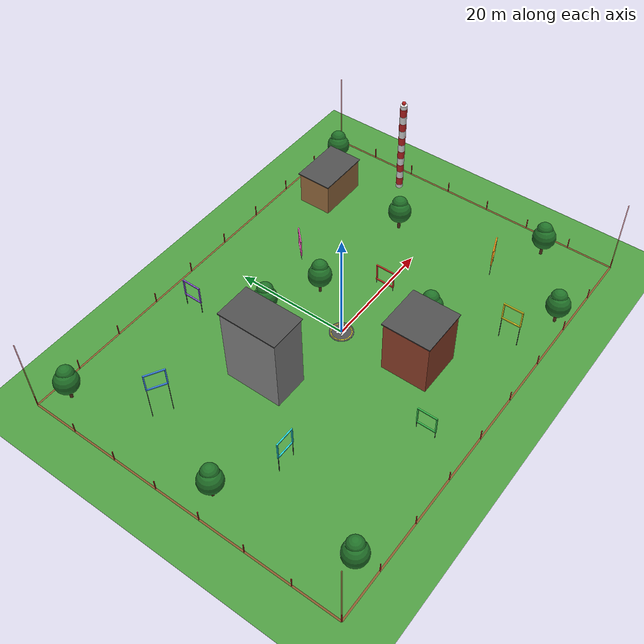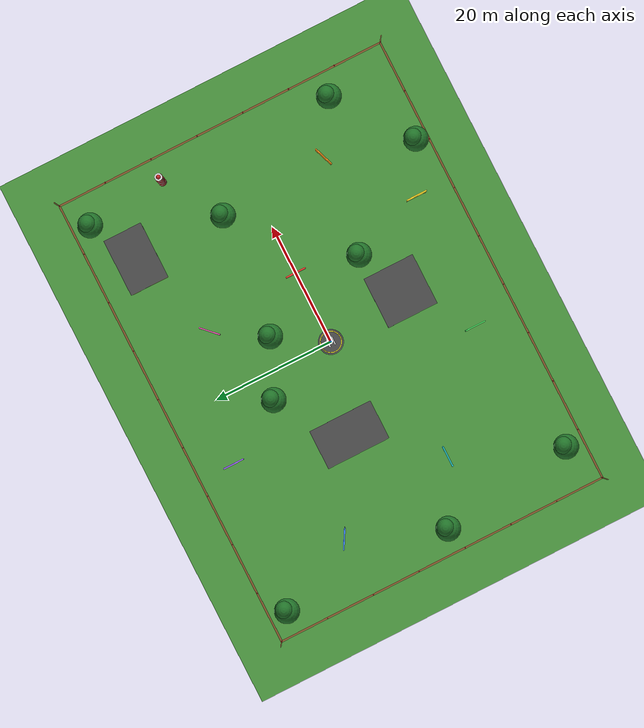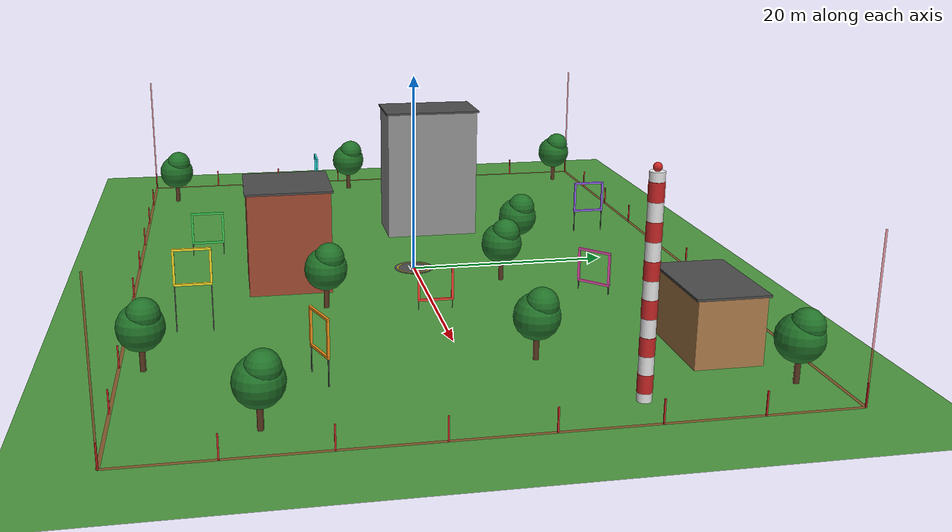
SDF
<sdf version="1.6">
 <world name="dronelab_arena">
  <physics type="ode">
   <ode>
    <solver><type>quick</type><iters>100</iters><sor>1.0</sor></solver>
    <constraints>
     <cfm>0.0</cfm>
     <erp>0.2</erp>
     <contact_max_correcting_vel>0.1</contact_max_correcting_vel>
     <contact_surface_layer>0.0</contact_surface_layer>
    </constraints>
   </ode>
   <max_step_size>0.001</max_step_size>
   <real_time_factor>1.0</real_time_factor>
   <real_time_update_rate>-1</real_time_update_rate>
  </physics>
  <gravity>0 0 -9.8</gravity>
  <spherical_coordinates>
   <surface_model>EARTH_WGS84</surface_model>
   <latitude_deg>48.1508457</latitude_deg>
   <longitude_deg>17.0727297</longitude_deg>
   <elevation>140.0</elevation>
   <heading_deg>0</heading_deg>
  </spherical_coordinates>
  <scene>
   <ambient>0.55 0.55 0.6 1</ambient>
   <background>0.62 0.78 0.95 1</background>
   <sky><clouds><speed>3</speed></clouds></sky>
   <shadows>false</shadows>
   <grid>false</grid>
   <origin_visual>false</origin_visual>
  </scene>
  <light name="sun" type="directional">
   <cast_shadows>false</cast_shadows>
   <pose>0 0 30 0 0 0</pose>
   <diffuse>0.9 0.9 0.85 1</diffuse>
   <specular>0.2 0.2 0.2 1</specular>
   <direction>-0.4 0.3 -0.85</direction>
  </light>
  <plugin name="gazebo_ros_state" filename="libgazebo_ros_state.so">
   <ros><namespace>/gazebo</namespace></ros>
   <update_rate>2.0</update_rate>
  </plugin>
  <model name="ground">
   <static>true</static>
   <link name="link">
    <collision name="c">
     <geometry><plane><normal>0 0 1</normal><size>300 300</size></plane></geometry>
     <surface><friction><ode><mu>1.0</mu><mu2>1.0</mu2></ode></friction></surface>
    </collision>
    <visual name="grass">
     <cast_shadows>false</cast_shadows>
     <geometry><plane><normal>0 0 1</normal><size>300 300</size></plane></geometry>
     <material>
      <script><uri>file://media/materials/scripts/gazebo.material</uri><name>Gazebo/Grass</name></script>
     </material>
    </visual>
    <visual name="road0">
     <pose>0.00 -6.00 0.005 0 0 0</pose>
     <geometry><box><size>120.0 4.0 0.01</size></box></geometry>
     <material>
      <script><uri>file://media/materials/scripts/gazebo.material</uri><name>Gazebo/Road</name></script>
     </material>
    </visual>
    <visual name="road1">
     <pose>-32.00 -0.00 0.005 0 0 0</pose>
     <geometry><box><size>4.0 120.0 0.01</size></box></geometry>
     <material>
      <script><uri>file://media/materials/scripts/gazebo.material</uri><name>Gazebo/Road</name></script>
     </material>
    </visual>
   </link>
  </model>
  <model name="landing_pad">
   <static>true</static>
   <link name="link">
    <visual name="pad_v">
     <pose>0 0 0.01 0 0 0</pose>
     <geometry><cylinder><radius>2.0</radius><length>0.02</length></cylinder></geometry>
     <material>
      <script><uri>file://media/materials/scripts/gazebo.material</uri><name>Gazebo/DarkGrey</name></script>
     </material>
    </visual>
    <visual name="ring_v">
     <pose>0 0 0.012 0 0 0</pose>
     <geometry><cylinder><radius>1.75</radius><length>0.02</length></cylinder></geometry>
     <material>
      <script><uri>file://media/materials/scripts/gazebo.material</uri><name>Gazebo/Yellow</name></script>
     </material>
    </visual>
    <visual name="inner_v">
     <pose>0 0 0.014 0 0 0</pose>
     <geometry><cylinder><radius>1.6</radius><length>0.02</length></cylinder></geometry>
     <material>
      <script><uri>file://media/materials/scripts/gazebo.material</uri><name>Gazebo/DarkGrey</name></script>
     </material>
    </visual>
    <visual name="h_l_v">
     <pose>0.000 0.450 0.026 0.0000 0.0000 0.0000</pose>
     <geometry><box><size>1.4 0.22 0.01</size></box></geometry>
     <material>
      <script><uri>file://media/materials/scripts/gazebo.material</uri><name>Gazebo/White</name></script>
     </material>
    </visual>
    <visual name="h_r_v">
     <pose>0.000 -0.450 0.026 0.0000 0.0000 0.0000</pose>
     <geometry><box><size>1.4 0.22 0.01</size></box></geometry>
     <material>
      <script><uri>file://media/materials/scripts/gazebo.material</uri><name>Gazebo/White</name></script>
     </material>
    </visual>
    <visual name="h_m_v">
     <pose>0.000 0.000 0.026 0.0000 0.0000 0.0000</pose>
     <geometry><box><size>0.22 0.9 0.01</size></box></geometry>
     <material>
      <script><uri>file://media/materials/scripts/gazebo.material</uri><name>Gazebo/White</name></script>
     </material>
    </visual>
   </link>
  </model>
  <model name="fence_markers">
   <static>true</static>
   <link name="link">
    <visual name="tape0_v">
     <pose>-38.000 0.000 0.020 0.0000 0.0000 -1.5708</pose>
     <geometry><box><size>56.0 0.3 0.02</size></box></geometry>
     <material>
      <script><uri>file://media/materials/scripts/gazebo.material</uri><name>Gazebo/RedTransparent</name></script>
     </material>
    </visual>
    <visual name="post0_0_v">
     <pose>-38.000 28.000 1.000 0.0000 0.0000 0.0000</pose>
     <geometry><box><size>0.12 0.12 2.0</size></box></geometry>
     <material>
      <script><uri>file://media/materials/scripts/gazebo.material</uri><name>Gazebo/Red</name></script>
     </material>
    </visual>
    <visual name="post0_1_v">
     <pose>-38.000 20.000 1.000 0.0000 0.0000 0.0000</pose>
     <geometry><box><size>0.12 0.12 2.0</size></box></geometry>
     <material>
      <script><uri>file://media/materials/scripts/gazebo.material</uri><name>Gazebo/Red</name></script>
     </material>
    </visual>
    <visual name="post0_2_v">
     <pose>-38.000 12.000 1.000 0.0000 0.0000 0.0000</pose>
     <geometry><box><size>0.12 0.12 2.0</size></box></geometry>
     <material>
      <script><uri>file://media/materials/scripts/gazebo.material</uri><name>Gazebo/Red</name></script>
     </material>
    </visual>
    <visual name="post0_3_v">
     <pose>-38.000 4.000 1.000 0.0000 0.0000 0.0000</pose>
     <geometry><box><size>0.12 0.12 2.0</size></box></geometry>
     <material>
      <script><uri>file://media/materials/scripts/gazebo.material</uri><name>Gazebo/Red</name></script>
     </material>
    </visual>
    <visual name="post0_4_v">
     <pose>-38.000 -4.000 1.000 0.0000 0.0000 0.0000</pose>
     <geometry><box><size>0.12 0.12 2.0</size></box></geometry>
     <material>
      <script><uri>file://media/materials/scripts/gazebo.material</uri><name>Gazebo/Red</name></script>
     </material>
    </visual>
    <visual name="post0_5_v">
     <pose>-38.000 -12.000 1.000 0.0000 0.0000 0.0000</pose>
     <geometry><box><size>0.12 0.12 2.0</size></box></geometry>
     <material>
      <script><uri>file://media/materials/scripts/gazebo.material</uri><name>Gazebo/Red</name></script>
     </material>
    </visual>
    <visual name="post0_6_v">
     <pose>-38.000 -20.000 1.000 0.0000 0.0000 0.0000</pose>
     <geometry><box><size>0.12 0.12 2.0</size></box></geometry>
     <material>
      <script><uri>file://media/materials/scripts/gazebo.material</uri><name>Gazebo/Red</name></script>
     </material>
    </visual>
    <visual name="tape1_v">
     <pose>0.000 -28.000 0.020 0.0000 0.0000 0.0000</pose>
     <geometry><box><size>76.0 0.3 0.02</size></box></geometry>
     <material>
      <script><uri>file://media/materials/scripts/gazebo.material</uri><name>Gazebo/RedTransparent</name></script>
     </material>
    </visual>
    <visual name="post1_0_v">
     <pose>-38.000 -28.000 1.000 0.0000 0.0000 0.0000</pose>
     <geometry><box><size>0.12 0.12 2.0</size></box></geometry>
     <material>
      <script><uri>file://media/materials/scripts/gazebo.material</uri><name>Gazebo/Red</name></script>
     </material>
    </visual>
    <visual name="post1_1_v">
     <pose>-29.556 -28.000 1.000 0.0000 0.0000 0.0000</pose>
     <geometry><box><size>0.12 0.12 2.0</size></box></geometry>
     <material>
      <script><uri>file://media/materials/scripts/gazebo.material</uri><name>Gazebo/Red</name></script>
     </material>
    </visual>
    <visual name="post1_2_v">
     <pose>-21.111 -28.000 1.000 0.0000 0.0000 0.0000</pose>
     <geometry><box><size>0.12 0.12 2.0</size></box></geometry>
     <material>
      <script><uri>file://media/materials/scripts/gazebo.material</uri><name>Gazebo/Red</name></script>
     </material>
    </visual>
    <visual name="post1_3_v">
     <pose>-12.667 -28.000 1.000 0.0000 0.0000 0.0000</pose>
     <geometry><box><size>0.12 0.12 2.0</size></box></geometry>
     <material>
      <script><uri>file://media/materials/scripts/gazebo.material</uri><name>Gazebo/Red</name></script>
     </material>
    </visual>
    <visual name="post1_4_v">
     <pose>-4.222 -28.000 1.000 0.0000 0.0000 0.0000</pose>
     <geometry><box><size>0.12 0.12 2.0</size></box></geometry>
     <material>
      <script><uri>file://media/materials/scripts/gazebo.material</uri><name>Gazebo/Red</name></script>
     </material>
    </visual>
    <visual name="post1_5_v">
     <pose>4.222 -28.000 1.000 0.0000 0.0000 0.0000</pose>
     <geometry><box><size>0.12 0.12 2.0</size></box></geometry>
     <material>
      <script><uri>file://media/materials/scripts/gazebo.material</uri><name>Gazebo/Red</name></script>
     </material>
    </visual>
    <visual name="post1_6_v">
     <pose>12.667 -28.000 1.000 0.0000 0.0000 0.0000</pose>
     <geometry><box><size>0.12 0.12 2.0</size></box></geometry>
     <material>
      <script><uri>file://media/materials/scripts/gazebo.material</uri><name>Gazebo/Red</name></script>
     </material>
    </visual>
    <visual name="post1_7_v">
     <pose>21.111 -28.000 1.000 0.0000 0.0000 0.0000</pose>
     <geometry><box><size>0.12 0.12 2.0</size></box></geometry>
     <material>
      <script><uri>file://media/materials/scripts/gazebo.material</uri><name>Gazebo/Red</name></script>
     </material>
    </visual>
    <visual name="post1_8_v">
     <pose>29.556 -28.000 1.000 0.0000 0.0000 0.0000</pose>
     <geometry><box><size>0.12 0.12 2.0</size></box></geometry>
     <material>
      <script><uri>file://media/materials/scripts/gazebo.material</uri><name>Gazebo/Red</name></script>
     </material>
    </visual>
    <visual name="tape2_v">
     <pose>38.000 0.000 0.020 0.0000 0.0000 1.5708</pose>
     <geometry><box><size>56.0 0.3 0.02</size></box></geometry>
     <material>
      <script><uri>file://media/materials/scripts/gazebo.material</uri><name>Gazebo/RedTransparent</name></script>
     </material>
    </visual>
    <visual name="post2_0_v">
     <pose>38.000 -28.000 1.000 0.0000 0.0000 0.0000</pose>
     <geometry><box><size>0.12 0.12 2.0</size></box></geometry>
     <material>
      <script><uri>file://media/materials/scripts/gazebo.material</uri><name>Gazebo/Red</name></script>
     </material>
    </visual>
    <visual name="post2_1_v">
     <pose>38.000 -20.000 1.000 0.0000 0.0000 0.0000</pose>
     <geometry><box><size>0.12 0.12 2.0</size></box></geometry>
     <material>
      <script><uri>file://media/materials/scripts/gazebo.material</uri><name>Gazebo/Red</name></script>
     </material>
    </visual>
    <visual name="post2_2_v">
     <pose>38.000 -12.000 1.000 0.0000 0.0000 0.0000</pose>
     <geometry><box><size>0.12 0.12 2.0</size></box></geometry>
     <material>
      <script><uri>file://media/materials/scripts/gazebo.material</uri><name>Gazebo/Red</name></script>
     </material>
    </visual>
    <visual name="post2_3_v">
     <pose>38.000 -4.000 1.000 0.0000 0.0000 0.0000</pose>
     <geometry><box><size>0.12 0.12 2.0</size></box></geometry>
     <material>
      <script><uri>file://media/materials/scripts/gazebo.material</uri><name>Gazebo/Red</name></script>
     </material>
    </visual>
    <visual name="post2_4_v">
     <pose>38.000 4.000 1.000 0.0000 0.0000 0.0000</pose>
     <geometry><box><size>0.12 0.12 2.0</size></box></geometry>
     <material>
      <script><uri>file://media/materials/scripts/gazebo.material</uri><name>Gazebo/Red</name></script>
     </material>
    </visual>
    <visual name="post2_5_v">
     <pose>38.000 12.000 1.000 0.0000 0.0000 0.0000</pose>
     <geometry><box><size>0.12 0.12 2.0</size></box></geometry>
     <material>
      <script><uri>file://media/materials/scripts/gazebo.material</uri><name>Gazebo/Red</name></script>
     </material>
    </visual>
    <visual name="post2_6_v">
     <pose>38.000 20.000 1.000 0.0000 0.0000 0.0000</pose>
     <geometry><box><size>0.12 0.12 2.0</size></box></geometry>
     <material>
      <script><uri>file://media/materials/scripts/gazebo.material</uri><name>Gazebo/Red</name></script>
     </material>
    </visual>
    <visual name="tape3_v">
     <pose>0.000 28.000 0.020 0.0000 0.0000 3.1416</pose>
     <geometry><box><size>76.0 0.3 0.02</size></box></geometry>
     <material>
      <script><uri>file://media/materials/scripts/gazebo.material</uri><name>Gazebo/RedTransparent</name></script>
     </material>
    </visual>
    <visual name="post3_0_v">
     <pose>38.000 28.000 1.000 0.0000 0.0000 0.0000</pose>
     <geometry><box><size>0.12 0.12 2.0</size></box></geometry>
     <material>
      <script><uri>file://media/materials/scripts/gazebo.material</uri><name>Gazebo/Red</name></script>
     </material>
    </visual>
    <visual name="post3_1_v">
     <pose>29.556 28.000 1.000 0.0000 0.0000 0.0000</pose>
     <geometry><box><size>0.12 0.12 2.0</size></box></geometry>
     <material>
      <script><uri>file://media/materials/scripts/gazebo.material</uri><name>Gazebo/Red</name></script>
     </material>
    </visual>
    <visual name="post3_2_v">
     <pose>21.111 28.000 1.000 0.0000 0.0000 0.0000</pose>
     <geometry><box><size>0.12 0.12 2.0</size></box></geometry>
     <material>
      <script><uri>file://media/materials/scripts/gazebo.material</uri><name>Gazebo/Red</name></script>
     </material>
    </visual>
    <visual name="post3_3_v">
     <pose>12.667 28.000 1.000 0.0000 0.0000 0.0000</pose>
     <geometry><box><size>0.12 0.12 2.0</size></box></geometry>
     <material>
      <script><uri>file://media/materials/scripts/gazebo.material</uri><name>Gazebo/Red</name></script>
     </material>
    </visual>
    <visual name="post3_4_v">
     <pose>4.222 28.000 1.000 0.0000 0.0000 0.0000</pose>
     <geometry><box><size>0.12 0.12 2.0</size></box></geometry>
     <material>
      <script><uri>file://media/materials/scripts/gazebo.material</uri><name>Gazebo/Red</name></script>
     </material>
    </visual>
    <visual name="post3_5_v">
     <pose>-4.222 28.000 1.000 0.0000 0.0000 0.0000</pose>
     <geometry><box><size>0.12 0.12 2.0</size></box></geometry>
     <material>
      <script><uri>file://media/materials/scripts/gazebo.material</uri><name>Gazebo/Red</name></script>
     </material>
    </visual>
    <visual name="post3_6_v">
     <pose>-12.667 28.000 1.000 0.0000 0.0000 0.0000</pose>
     <geometry><box><size>0.12 0.12 2.0</size></box></geometry>
     <material>
      <script><uri>file://media/materials/scripts/gazebo.material</uri><name>Gazebo/Red</name></script>
     </material>
    </visual>
    <visual name="post3_7_v">
     <pose>-21.111 28.000 1.000 0.0000 0.0000 0.0000</pose>
     <geometry><box><size>0.12 0.12 2.0</size></box></geometry>
     <material>
      <script><uri>file://media/materials/scripts/gazebo.material</uri><name>Gazebo/Red</name></script>
     </material>
    </visual>
    <visual name="post3_8_v">
     <pose>-29.556 28.000 1.000 0.0000 0.0000 0.0000</pose>
     <geometry><box><size>0.12 0.12 2.0</size></box></geometry>
     <material>
      <script><uri>file://media/materials/scripts/gazebo.material</uri><name>Gazebo/Red</name></script>
     </material>
    </visual>
    <visual name="mast0_v">
     <pose>-38 28 7.0 0 0 0</pose>
     <geometry><cylinder><radius>0.08</radius><length>14.0</length></cylinder></geometry>
     <material>
      <script><uri>file://media/materials/scripts/gazebo.material</uri><name>Gazebo/RedTransparent</name></script>
     </material>
    </visual>
    <visual name="mast1_v">
     <pose>-38 -28 7.0 0 0 0</pose>
     <geometry><cylinder><radius>0.08</radius><length>14.0</length></cylinder></geometry>
     <material>
      <script><uri>file://media/materials/scripts/gazebo.material</uri><name>Gazebo/RedTransparent</name></script>
     </material>
    </visual>
    <visual name="mast2_v">
     <pose>38 -28 7.0 0 0 0</pose>
     <geometry><cylinder><radius>0.08</radius><length>14.0</length></cylinder></geometry>
     <material>
      <script><uri>file://media/materials/scripts/gazebo.material</uri><name>Gazebo/RedTransparent</name></script>
     </material>
    </visual>
    <visual name="mast3_v">
     <pose>38 28 7.0 0 0 0</pose>
     <geometry><cylinder><radius>0.08</radius><length>14.0</length></cylinder></geometry>
     <material>
      <script><uri>file://media/materials/scripts/gazebo.material</uri><name>Gazebo/RedTransparent</name></script>
     </material>
    </visual>
   </link>
  </model>
  <model name="gate_1">
   <static>true</static>
   <pose>12.000 -0.000 2.500 0 0 0.0000</pose>
   <link name="link">
    <visual name="top_v">
     <pose>0.000 0.000 1.600 0.0000 0.0000 0.0000</pose>
     <geometry><box><size>0.2 3.4 0.2</size></box></geometry>
     <material>
      <ambient>1.0 0.27 0.2 1</ambient>
      <diffuse>1.0 0.27 0.2 1</diffuse>
      <specular>0.2 0.2 0.2 1</specular>
      <emissive>0.350 0.095 0.070 1</emissive>
     </material>
    </visual>
    <visual name="bottom_v">
     <pose>0.000 0.000 -1.600 0.0000 0.0000 0.0000</pose>
     <geometry><box><size>0.2 3.4 0.2</size></box></geometry>
     <material>
      <ambient>1.0 0.27 0.2 1</ambient>
      <diffuse>1.0 0.27 0.2 1</diffuse>
      <specular>0.2 0.2 0.2 1</specular>
      <emissive>0.350 0.095 0.070 1</emissive>
     </material>
    </visual>
    <visual name="left_v">
     <pose>0.000 1.600 0.000 0.0000 0.0000 0.0000</pose>
     <geometry><box><size>0.2 0.2 3.0</size></box></geometry>
     <material>
      <ambient>1.0 0.27 0.2 1</ambient>
      <diffuse>1.0 0.27 0.2 1</diffuse>
      <specular>0.2 0.2 0.2 1</specular>
      <emissive>0.350 0.095 0.070 1</emissive>
     </material>
    </visual>
    <visual name="right_v">
     <pose>0.000 -1.600 0.000 0.0000 0.0000 0.0000</pose>
     <geometry><box><size>0.2 0.2 3.0</size></box></geometry>
     <material>
      <ambient>1.0 0.27 0.2 1</ambient>
      <diffuse>1.0 0.27 0.2 1</diffuse>
      <specular>0.2 0.2 0.2 1</specular>
      <emissive>0.350 0.095 0.070 1</emissive>
     </material>
    </visual>
    <visual name="legl_v">
     <pose>0.000 1.600 -2.100 0.0000 0.0000 0.0000</pose>
     <geometry><box><size>0.08 0.08 0.8</size></box></geometry>
     <material>
      <script><uri>file://media/materials/scripts/gazebo.material</uri><name>Gazebo/DarkGrey</name></script>
     </material>
    </visual>
    <visual name="legr_v">
     <pose>0.000 -1.600 -2.100 0.0000 0.0000 0.0000</pose>
     <geometry><box><size>0.08 0.08 0.8</size></box></geometry>
     <material>
      <script><uri>file://media/materials/scripts/gazebo.material</uri><name>Gazebo/DarkGrey</name></script>
     </material>
    </visual>
   </link>
  </model>
  <model name="gate_2">
   <static>true</static>
   <pose>26.000 -12.000 4.000 0 0 -1.2217</pose>
   <link name="link">
    <visual name="top_v">
     <pose>0.000 0.000 1.600 0.0000 0.0000 0.0000</pose>
     <geometry><box><size>0.2 3.4 0.2</size></box></geometry>
     <material>
      <ambient>1.0 0.6 0.1 1</ambient>
      <diffuse>1.0 0.6 0.1 1</diffuse>
      <specular>0.2 0.2 0.2 1</specular>
      <emissive>0.350 0.210 0.035 1</emissive>
     </material>
    </visual>
    <visual name="bottom_v">
     <pose>0.000 0.000 -1.600 0.0000 0.0000 0.0000</pose>
     <geometry><box><size>0.2 3.4 0.2</size></box></geometry>
     <material>
      <ambient>1.0 0.6 0.1 1</ambient>
      <diffuse>1.0 0.6 0.1 1</diffuse>
      <specular>0.2 0.2 0.2 1</specular>
      <emissive>0.350 0.210 0.035 1</emissive>
     </material>
    </visual>
    <visual name="left_v">
     <pose>0.000 1.600 0.000 0.0000 0.0000 0.0000</pose>
     <geometry><box><size>0.2 0.2 3.0</size></box></geometry>
     <material>
      <ambient>1.0 0.6 0.1 1</ambient>
      <diffuse>1.0 0.6 0.1 1</diffuse>
      <specular>0.2 0.2 0.2 1</specular>
      <emissive>0.350 0.210 0.035 1</emissive>
     </material>
    </visual>
    <visual name="right_v">
     <pose>0.000 -1.600 0.000 0.0000 0.0000 0.0000</pose>
     <geometry><box><size>0.2 0.2 3.0</size></box></geometry>
     <material>
      <ambient>1.0 0.6 0.1 1</ambient>
      <diffuse>1.0 0.6 0.1 1</diffuse>
      <specular>0.2 0.2 0.2 1</specular>
      <emissive>0.350 0.210 0.035 1</emissive>
     </material>
    </visual>
    <visual name="legl_v">
     <pose>0.000 1.600 -2.850 0.0000 0.0000 0.0000</pose>
     <geometry><box><size>0.08 0.08 2.3</size></box></geometry>
     <material>
      <script><uri>file://media/materials/scripts/gazebo.material</uri><name>Gazebo/DarkGrey</name></script>
     </material>
    </visual>
    <visual name="legr_v">
     <pose>0.000 -1.600 -2.850 0.0000 0.0000 0.0000</pose>
     <geometry><box><size>0.08 0.08 2.3</size></box></geometry>
     <material>
      <script><uri>file://media/materials/scripts/gazebo.material</uri><name>Gazebo/DarkGrey</name></script>
     </material>
    </visual>
   </link>
  </model>
  <model name="gate_3">
   <static>true</static>
   <pose>14.000 -22.000 6.000 0 0 -3.1416</pose>
   <link name="link">
    <visual name="top_v">
     <pose>0.000 0.000 1.600 0.0000 0.0000 0.0000</pose>
     <geometry><box><size>0.2 3.4 0.2</size></box></geometry>
     <material>
      <ambient>1.0 0.88 0.15 1</ambient>
      <diffuse>1.0 0.88 0.15 1</diffuse>
      <specular>0.2 0.2 0.2 1</specular>
      <emissive>0.350 0.308 0.052 1</emissive>
     </material>
    </visual>
    <visual name="bottom_v">
     <pose>0.000 0.000 -1.600 0.0000 0.0000 0.0000</pose>
     <geometry><box><size>0.2 3.4 0.2</size></box></geometry>
     <material>
      <ambient>1.0 0.88 0.15 1</ambient>
      <diffuse>1.0 0.88 0.15 1</diffuse>
      <specular>0.2 0.2 0.2 1</specular>
      <emissive>0.350 0.308 0.052 1</emissive>
     </material>
    </visual>
    <visual name="left_v">
     <pose>0.000 1.600 0.000 0.0000 0.0000 0.0000</pose>
     <geometry><box><size>0.2 0.2 3.0</size></box></geometry>
     <material>
      <ambient>1.0 0.88 0.15 1</ambient>
      <diffuse>1.0 0.88 0.15 1</diffuse>
      <specular>0.2 0.2 0.2 1</specular>
      <emissive>0.350 0.308 0.052 1</emissive>
     </material>
    </visual>
    <visual name="right_v">
     <pose>0.000 -1.600 0.000 0.0000 0.0000 0.0000</pose>
     <geometry><box><size>0.2 0.2 3.0</size></box></geometry>
     <material>
      <ambient>1.0 0.88 0.15 1</ambient>
      <diffuse>1.0 0.88 0.15 1</diffuse>
      <specular>0.2 0.2 0.2 1</specular>
      <emissive>0.350 0.308 0.052 1</emissive>
     </material>
    </visual>
    <visual name="legl_v">
     <pose>0.000 1.600 -3.850 0.0000 0.0000 0.0000</pose>
     <geometry><box><size>0.08 0.08 4.3</size></box></geometry>
     <material>
      <script><uri>file://media/materials/scripts/gazebo.material</uri><name>Gazebo/DarkGrey</name></script>
     </material>
    </visual>
    <visual name="legr_v">
     <pose>0.000 -1.600 -3.850 0.0000 0.0000 0.0000</pose>
     <geometry><box><size>0.08 0.08 4.3</size></box></geometry>
     <material>
      <script><uri>file://media/materials/scripts/gazebo.material</uri><name>Gazebo/DarkGrey</name></script>
     </material>
    </visual>
   </link>
  </model>
  <model name="gate_4">
   <static>true</static>
   <pose>-8.000 -21.000 3.000 0 0 -3.1416</pose>
   <link name="link">
    <visual name="top_v">
     <pose>0.000 0.000 1.600 0.0000 0.0000 0.0000</pose>
     <geometry><box><size>0.2 3.4 0.2</size></box></geometry>
     <material>
      <ambient>0.25 0.85 0.35 1</ambient>
      <diffuse>0.25 0.85 0.35 1</diffuse>
      <specular>0.2 0.2 0.2 1</specular>
      <emissive>0.087 0.297 0.122 1</emissive>
     </material>
    </visual>
    <visual name="bottom_v">
     <pose>0.000 0.000 -1.600 0.0000 0.0000 0.0000</pose>
     <geometry><box><size>0.2 3.4 0.2</size></box></geometry>
     <material>
      <ambient>0.25 0.85 0.35 1</ambient>
      <diffuse>0.25 0.85 0.35 1</diffuse>
      <specular>0.2 0.2 0.2 1</specular>
      <emissive>0.087 0.297 0.122 1</emissive>
     </material>
    </visual>
    <visual name="left_v">
     <pose>0.000 1.600 0.000 0.0000 0.0000 0.0000</pose>
     <geometry><box><size>0.2 0.2 3.0</size></box></geometry>
     <material>
      <ambient>0.25 0.85 0.35 1</ambient>
      <diffuse>0.25 0.85 0.35 1</diffuse>
      <specular>0.2 0.2 0.2 1</specular>
      <emissive>0.087 0.297 0.122 1</emissive>
     </material>
    </visual>
    <visual name="right_v">
     <pose>0.000 -1.600 0.000 0.0000 0.0000 0.0000</pose>
     <geometry><box><size>0.2 0.2 3.0</size></box></geometry>
     <material>
      <ambient>0.25 0.85 0.35 1</ambient>
      <diffuse>0.25 0.85 0.35 1</diffuse>
      <specular>0.2 0.2 0.2 1</specular>
      <emissive>0.087 0.297 0.122 1</emissive>
     </material>
    </visual>
    <visual name="legl_v">
     <pose>0.000 1.600 -2.350 0.0000 0.0000 0.0000</pose>
     <geometry><box><size>0.08 0.08 1.3</size></box></geometry>
     <material>
      <script><uri>file://media/materials/scripts/gazebo.material</uri><name>Gazebo/DarkGrey</name></script>
     </material>
    </visual>
    <visual name="legr_v">
     <pose>0.000 -1.600 -2.350 0.0000 0.0000 0.0000</pose>
     <geometry><box><size>0.08 0.08 1.3</size></box></geometry>
     <material>
      <script><uri>file://media/materials/scripts/gazebo.material</uri><name>Gazebo/DarkGrey</name></script>
     </material>
    </visual>
   </link>
  </model>
  <model name="gate_5">
   <static>true</static>
   <pose>-24.000 -8.000 5.000 0 0 1.5708</pose>
   <link name="link">
    <visual name="top_v">
     <pose>0.000 0.000 1.600 0.0000 0.0000 0.0000</pose>
     <geometry><box><size>0.2 3.4 0.2</size></box></geometry>
     <material>
      <ambient>0.15 0.85 0.85 1</ambient>
      <diffuse>0.15 0.85 0.85 1</diffuse>
      <specular>0.2 0.2 0.2 1</specular>
      <emissive>0.052 0.297 0.297 1</emissive>
     </material>
    </visual>
    <visual name="bottom_v">
     <pose>0.000 0.000 -1.600 0.0000 0.0000 0.0000</pose>
     <geometry><box><size>0.2 3.4 0.2</size></box></geometry>
     <material>
      <ambient>0.15 0.85 0.85 1</ambient>
      <diffuse>0.15 0.85 0.85 1</diffuse>
      <specular>0.2 0.2 0.2 1</specular>
      <emissive>0.052 0.297 0.297 1</emissive>
     </material>
    </visual>
    <visual name="left_v">
     <pose>0.000 1.600 0.000 0.0000 0.0000 0.0000</pose>
     <geometry><box><size>0.2 0.2 3.0</size></box></geometry>
     <material>
      <ambient>0.15 0.85 0.85 1</ambient>
      <diffuse>0.15 0.85 0.85 1</diffuse>
      <specular>0.2 0.2 0.2 1</specular>
      <emissive>0.052 0.297 0.297 1</emissive>
     </material>
    </visual>
    <visual name="right_v">
     <pose>0.000 -1.600 0.000 0.0000 0.0000 0.0000</pose>
     <geometry><box><size>0.2 0.2 3.0</size></box></geometry>
     <material>
      <ambient>0.15 0.85 0.85 1</ambient>
      <diffuse>0.15 0.85 0.85 1</diffuse>
      <specular>0.2 0.2 0.2 1</specular>
      <emissive>0.052 0.297 0.297 1</emissive>
     </material>
    </visual>
    <visual name="legl_v">
     <pose>0.000 1.600 -3.350 0.0000 0.0000 0.0000</pose>
     <geometry><box><size>0.08 0.08 3.3</size></box></geometry>
     <material>
      <script><uri>file://media/materials/scripts/gazebo.material</uri><name>Gazebo/DarkGrey</name></script>
     </material>
    </visual>
    <visual name="legr_v">
     <pose>0.000 -1.600 -3.350 0.0000 0.0000 0.0000</pose>
     <geometry><box><size>0.08 0.08 3.3</size></box></geometry>
     <material>
      <script><uri>file://media/materials/scripts/gazebo.material</uri><name>Gazebo/DarkGrey</name></script>
     </material>
    </visual>
   </link>
  </model>
  <model name="gate_6">
   <static>true</static>
   <pose>-28.000 12.000 8.000 0 0 1.0472</pose>
   <link name="link">
    <visual name="top_v">
     <pose>0.000 0.000 1.600 0.0000 0.0000 0.0000</pose>
     <geometry><box><size>0.2 3.4 0.2</size></box></geometry>
     <material>
      <ambient>0.25 0.55 1.0 1</ambient>
      <diffuse>0.25 0.55 1.0 1</diffuse>
      <specular>0.2 0.2 0.2 1</specular>
      <emissive>0.087 0.193 0.350 1</emissive>
     </material>
    </visual>
    <visual name="bottom_v">
     <pose>0.000 0.000 -1.600 0.0000 0.0000 0.0000</pose>
     <geometry><box><size>0.2 3.4 0.2</size></box></geometry>
     <material>
      <ambient>0.25 0.55 1.0 1</ambient>
      <diffuse>0.25 0.55 1.0 1</diffuse>
      <specular>0.2 0.2 0.2 1</specular>
      <emissive>0.087 0.193 0.350 1</emissive>
     </material>
    </visual>
    <visual name="left_v">
     <pose>0.000 1.600 0.000 0.0000 0.0000 0.0000</pose>
     <geometry><box><size>0.2 0.2 3.0</size></box></geometry>
     <material>
      <ambient>0.25 0.55 1.0 1</ambient>
      <diffuse>0.25 0.55 1.0 1</diffuse>
      <specular>0.2 0.2 0.2 1</specular>
      <emissive>0.087 0.193 0.350 1</emissive>
     </material>
    </visual>
    <visual name="right_v">
     <pose>0.000 -1.600 0.000 0.0000 0.0000 0.0000</pose>
     <geometry><box><size>0.2 0.2 3.0</size></box></geometry>
     <material>
      <ambient>0.25 0.55 1.0 1</ambient>
      <diffuse>0.25 0.55 1.0 1</diffuse>
      <specular>0.2 0.2 0.2 1</specular>
      <emissive>0.087 0.193 0.350 1</emissive>
     </material>
    </visual>
    <visual name="legl_v">
     <pose>0.000 1.600 -4.850 0.0000 0.0000 0.0000</pose>
     <geometry><box><size>0.08 0.08 6.3</size></box></geometry>
     <material>
      <script><uri>file://media/materials/scripts/gazebo.material</uri><name>Gazebo/DarkGrey</name></script>
     </material>
    </visual>
    <visual name="legr_v">
     <pose>0.000 -1.600 -4.850 0.0000 0.0000 0.0000</pose>
     <geometry><box><size>0.08 0.08 6.3</size></box></geometry>
     <material>
      <script><uri>file://media/materials/scripts/gazebo.material</uri><name>Gazebo/DarkGrey</name></script>
     </material>
    </visual>
   </link>
  </model>
  <model name="gate_7">
   <static>true</static>
   <pose>-10.000 22.000 4.000 0 0 0.0000</pose>
   <link name="link">
    <visual name="top_v">
     <pose>0.000 0.000 1.600 0.0000 0.0000 0.0000</pose>
     <geometry><box><size>0.2 3.4 0.2</size></box></geometry>
     <material>
      <ambient>0.62 0.4 1.0 1</ambient>
      <diffuse>0.62 0.4 1.0 1</diffuse>
      <specular>0.2 0.2 0.2 1</specular>
      <emissive>0.217 0.140 0.350 1</emissive>
     </material>
    </visual>
    <visual name="bottom_v">
     <pose>0.000 0.000 -1.600 0.0000 0.0000 0.0000</pose>
     <geometry><box><size>0.2 3.4 0.2</size></box></geometry>
     <material>
      <ambient>0.62 0.4 1.0 1</ambient>
      <diffuse>0.62 0.4 1.0 1</diffuse>
      <specular>0.2 0.2 0.2 1</specular>
      <emissive>0.217 0.140 0.350 1</emissive>
     </material>
    </visual>
    <visual name="left_v">
     <pose>0.000 1.600 0.000 0.0000 0.0000 0.0000</pose>
     <geometry><box><size>0.2 0.2 3.0</size></box></geometry>
     <material>
      <ambient>0.62 0.4 1.0 1</ambient>
      <diffuse>0.62 0.4 1.0 1</diffuse>
      <specular>0.2 0.2 0.2 1</specular>
      <emissive>0.217 0.140 0.350 1</emissive>
     </material>
    </visual>
    <visual name="right_v">
     <pose>0.000 -1.600 0.000 0.0000 0.0000 0.0000</pose>
     <geometry><box><size>0.2 0.2 3.0</size></box></geometry>
     <material>
      <ambient>0.62 0.4 1.0 1</ambient>
      <diffuse>0.62 0.4 1.0 1</diffuse>
      <specular>0.2 0.2 0.2 1</specular>
      <emissive>0.217 0.140 0.350 1</emissive>
     </material>
    </visual>
    <visual name="legl_v">
     <pose>0.000 1.600 -2.850 0.0000 0.0000 0.0000</pose>
     <geometry><box><size>0.08 0.08 2.3</size></box></geometry>
     <material>
      <script><uri>file://media/materials/scripts/gazebo.material</uri><name>Gazebo/DarkGrey</name></script>
     </material>
    </visual>
    <visual name="legr_v">
     <pose>0.000 -1.600 -2.850 0.0000 0.0000 0.0000</pose>
     <geometry><box><size>0.08 0.08 2.3</size></box></geometry>
     <material>
      <script><uri>file://media/materials/scripts/gazebo.material</uri><name>Gazebo/DarkGrey</name></script>
     </material>
    </visual>
   </link>
  </model>
  <model name="gate_8">
   <static>true</static>
   <pose>10.000 16.000 2.500 0 0 -0.7854</pose>
   <link name="link">
    <visual name="top_v">
     <pose>0.000 0.000 1.600 0.0000 0.0000 0.0000</pose>
     <geometry><box><size>0.2 3.4 0.2</size></box></geometry>
     <material>
      <ambient>1.0 0.35 0.75 1</ambient>
      <diffuse>1.0 0.35 0.75 1</diffuse>
      <specular>0.2 0.2 0.2 1</specular>
      <emissive>0.350 0.122 0.262 1</emissive>
     </material>
    </visual>
    <visual name="bottom_v">
     <pose>0.000 0.000 -1.600 0.0000 0.0000 0.0000</pose>
     <geometry><box><size>0.2 3.4 0.2</size></box></geometry>
     <material>
      <ambient>1.0 0.35 0.75 1</ambient>
      <diffuse>1.0 0.35 0.75 1</diffuse>
      <specular>0.2 0.2 0.2 1</specular>
      <emissive>0.350 0.122 0.262 1</emissive>
     </material>
    </visual>
    <visual name="left_v">
     <pose>0.000 1.600 0.000 0.0000 0.0000 0.0000</pose>
     <geometry><box><size>0.2 0.2 3.0</size></box></geometry>
     <material>
      <ambient>1.0 0.35 0.75 1</ambient>
      <diffuse>1.0 0.35 0.75 1</diffuse>
      <specular>0.2 0.2 0.2 1</specular>
      <emissive>0.350 0.122 0.262 1</emissive>
     </material>
    </visual>
    <visual name="right_v">
     <pose>0.000 -1.600 0.000 0.0000 0.0000 0.0000</pose>
     <geometry><box><size>0.2 0.2 3.0</size></box></geometry>
     <material>
      <ambient>1.0 0.35 0.75 1</ambient>
      <diffuse>1.0 0.35 0.75 1</diffuse>
      <specular>0.2 0.2 0.2 1</specular>
      <emissive>0.350 0.122 0.262 1</emissive>
     </material>
    </visual>
    <visual name="legl_v">
     <pose>0.000 1.600 -2.100 0.0000 0.0000 0.0000</pose>
     <geometry><box><size>0.08 0.08 0.8</size></box></geometry>
     <material>
      <script><uri>file://media/materials/scripts/gazebo.material</uri><name>Gazebo/DarkGrey</name></script>
     </material>
    </visual>
    <visual name="legr_v">
     <pose>0.000 -1.600 -2.100 0.0000 0.0000 0.0000</pose>
     <geometry><box><size>0.08 0.08 0.8</size></box></geometry>
     <material>
      <script><uri>file://media/materials/scripts/gazebo.material</uri><name>Gazebo/DarkGrey</name></script>
     </material>
    </visual>
   </link>
  </model>
  <model name="building_1">
   <static>true</static>
   <pose>2.000 -13.000 5.000 0 0 0</pose>
   <link name="link">
    <visual name="body_v">
     <geometry><box><size>8.0 8.0 10.0</size></box></geometry>
     <material>
      <script><uri>file://media/materials/scripts/gazebo.material</uri><name>Gazebo/Bricks</name></script>
     </material>
    </visual>
    <collision name="body_c"><geometry><box><size>8.0 8.0 10.0</size></box></geometry></collision>
    <visual name="roof_v">
     <pose>0.000 0.000 5.100 0.0000 0.0000 0.0000</pose>
     <geometry><box><size>8.4 8.4 0.2</size></box></geometry>
     <material>
      <script><uri>file://media/materials/scripts/gazebo.material</uri><name>Gazebo/DarkGrey</name></script>
     </material>
    </visual>
    <collision name="roof_c">
     <pose>0.000 0.000 5.100 0.0000 0.0000 0.0000</pose>
     <geometry><box><size>8.4 8.4 0.2</size></box></geometry>
    </collision>
   </link>
  </model>
  <model name="building_2">
   <static>true</static>
   <pose>-14.000 4.000 7.000 0 0 0</pose>
   <link name="link">
    <visual name="body_v">
     <geometry><box><size>6.0 10.0 14.0</size></box></geometry>
     <material>
      <script><uri>file://media/materials/scripts/gazebo.material</uri><name>Gazebo/Grey</name></script>
     </material>
    </visual>
    <collision name="body_c"><geometry><box><size>6.0 10.0 14.0</size></box></geometry></collision>
    <visual name="roof_v">
     <pose>0.000 0.000 7.100 0.0000 0.0000 0.0000</pose>
     <geometry><box><size>6.4 10.4 0.2</size></box></geometry>
     <material>
      <script><uri>file://media/materials/scripts/gazebo.material</uri><name>Gazebo/DarkGrey</name></script>
     </material>
    </visual>
    <collision name="roof_c">
     <pose>0.000 0.000 7.100 0.0000 0.0000 0.0000</pose>
     <geometry><box><size>6.4 10.4 0.2</size></box></geometry>
    </collision>
   </link>
  </model>
  <model name="building_3">
   <static>true</static>
   <pose>25.000 21.000 3.000 0 0 0</pose>
   <link name="link">
    <visual name="body_v">
     <geometry><box><size>9.0 6.0 6.0</size></box></geometry>
     <material>
      <script><uri>file://media/materials/scripts/gazebo.material</uri><name>Gazebo/Wood</name></script>
     </material>
    </visual>
    <collision name="body_c"><geometry><box><size>9.0 6.0 6.0</size></box></geometry></collision>
    <visual name="roof_v">
     <pose>0.000 0.000 3.100 0.0000 0.0000 0.0000</pose>
     <geometry><box><size>9.4 6.4 0.2</size></box></geometry>
     <material>
      <script><uri>file://media/materials/scripts/gazebo.material</uri><name>Gazebo/DarkGrey</name></script>
     </material>
    </visual>
    <collision name="roof_c">
     <pose>0.000 0.000 3.100 0.0000 0.0000 0.0000</pose>
     <geometry><box><size>9.4 6.4 0.2</size></box></geometry>
    </collision>
   </link>
  </model>
  <model name="tree_1">
   <static>true</static>
   <pose>10.000 -10.000 0 0 0 0</pose>
   <link name="link">
    <visual name="trunk_v">
     <pose>0 0 1.25 0 0 0</pose>
     <geometry><cylinder><radius>0.25</radius><length>2.5</length></cylinder></geometry>
     <material>
      <ambient>0.35 0.22 0.12 1</ambient>
      <diffuse>0.35 0.22 0.12 1</diffuse>
      <specular>0.2 0.2 0.2 1</specular>
      <emissive>0.000 0.000 0.000 1</emissive>
     </material>
    </visual>
    <collision name="trunk_c">
     <pose>0 0 1.25 0 0 0</pose>
     <geometry><cylinder><radius>0.25</radius><length>2.5</length></cylinder></geometry>
    </collision>
    <visual name="crown_v">
     <pose>0 0 3.8 0 0 0</pose>
     <geometry><sphere><radius>2.0</radius></sphere></geometry>
     <material>
      <ambient>0.13 0.45 0.16 1</ambient>
      <diffuse>0.13 0.45 0.16 1</diffuse>
      <specular>0.2 0.2 0.2 1</specular>
      <emissive>0.007 0.023 0.008 1</emissive>
     </material>
    </visual>
    <collision name="crown_c">
     <pose>0 0 3.8 0 0 0</pose>
     <geometry><sphere><radius>2.0</radius></sphere></geometry>
    </collision>
    <visual name="crown2_v">
     <pose>0.4 0.3 5.0 0 0 0</pose>
     <geometry><sphere><radius>1.4</radius></sphere></geometry>
     <material>
      <ambient>0.13 0.45 0.16 1</ambient>
      <diffuse>0.13 0.45 0.16 1</diffuse>
      <specular>0.2 0.2 0.2 1</specular>
      <emissive>0.007 0.023 0.008 1</emissive>
     </material>
    </visual>
   </link>
  </model>
  <model name="tree_2">
   <static>true</static>
   <pose>5.000 8.000 0 0 0 0</pose>
   <link name="link">
    <visual name="trunk_v">
     <pose>0 0 1.25 0 0 0</pose>
     <geometry><cylinder><radius>0.25</radius><length>2.5</length></cylinder></geometry>
     <material>
      <ambient>0.35 0.22 0.12 1</ambient>
      <diffuse>0.35 0.22 0.12 1</diffuse>
      <specular>0.2 0.2 0.2 1</specular>
      <emissive>0.000 0.000 0.000 1</emissive>
     </material>
    </visual>
    <collision name="trunk_c">
     <pose>0 0 1.25 0 0 0</pose>
     <geometry><cylinder><radius>0.25</radius><length>2.5</length></cylinder></geometry>
    </collision>
    <visual name="crown_v">
     <pose>0 0 3.8 0 0 0</pose>
     <geometry><sphere><radius>2.0</radius></sphere></geometry>
     <material>
      <ambient>0.13 0.45 0.16 1</ambient>
      <diffuse>0.13 0.45 0.16 1</diffuse>
      <specular>0.2 0.2 0.2 1</specular>
      <emissive>0.007 0.023 0.008 1</emissive>
     </material>
    </visual>
    <collision name="crown_c">
     <pose>0 0 3.8 0 0 0</pose>
     <geometry><sphere><radius>2.0</radius></sphere></geometry>
    </collision>
    <visual name="crown2_v">
     <pose>0.4 0.3 5.0 0 0 0</pose>
     <geometry><sphere><radius>1.4</radius></sphere></geometry>
     <material>
      <ambient>0.13 0.45 0.16 1</ambient>
      <diffuse>0.13 0.45 0.16 1</diffuse>
      <specular>0.2 0.2 0.2 1</specular>
      <emissive>0.007 0.023 0.008 1</emissive>
     </material>
    </visual>
   </link>
  </model>
  <model name="tree_3">
   <static>true</static>
   <pose>34.000 -17.000 0 0 0 0</pose>
   <link name="link">
    <visual name="trunk_v">
     <pose>0 0 1.25 0 0 0</pose>
     <geometry><cylinder><radius>0.25</radius><length>2.5</length></cylinder></geometry>
     <material>
      <ambient>0.35 0.22 0.12 1</ambient>
      <diffuse>0.35 0.22 0.12 1</diffuse>
      <specular>0.2 0.2 0.2 1</specular>
      <emissive>0.000 0.000 0.000 1</emissive>
     </material>
    </visual>
    <collision name="trunk_c">
     <pose>0 0 1.25 0 0 0</pose>
     <geometry><cylinder><radius>0.25</radius><length>2.5</length></cylinder></geometry>
    </collision>
    <visual name="crown_v">
     <pose>0 0 3.8 0 0 0</pose>
     <geometry><sphere><radius>2.0</radius></sphere></geometry>
     <material>
      <ambient>0.13 0.45 0.16 1</ambient>
      <diffuse>0.13 0.45 0.16 1</diffuse>
      <specular>0.2 0.2 0.2 1</specular>
      <emissive>0.007 0.023 0.008 1</emissive>
     </material>
    </visual>
    <collision name="crown_c">
     <pose>0 0 3.8 0 0 0</pose>
     <geometry><sphere><radius>2.0</radius></sphere></geometry>
    </collision>
    <visual name="crown2_v">
     <pose>0.4 0.3 5.0 0 0 0</pose>
     <geometry><sphere><radius>1.4</radius></sphere></geometry>
     <material>
      <ambient>0.13 0.45 0.16 1</ambient>
      <diffuse>0.13 0.45 0.16 1</diffuse>
      <specular>0.2 0.2 0.2 1</specular>
      <emissive>0.007 0.023 0.008 1</emissive>
     </material>
    </visual>
   </link>
  </model>
  <model name="tree_4">
   <static>true</static>
   <pose>33.000 25.000 0 0 0 0</pose>
   <link name="link">
    <visual name="trunk_v">
     <pose>0 0 1.25 0 0 0</pose>
     <geometry><cylinder><radius>0.25</radius><length>2.5</length></cylinder></geometry>
     <material>
      <ambient>0.35 0.22 0.12 1</ambient>
      <diffuse>0.35 0.22 0.12 1</diffuse>
      <specular>0.2 0.2 0.2 1</specular>
      <emissive>0.000 0.000 0.000 1</emissive>
     </material>
    </visual>
    <collision name="trunk_c">
     <pose>0 0 1.25 0 0 0</pose>
     <geometry><cylinder><radius>0.25</radius><length>2.5</length></cylinder></geometry>
    </collision>
    <visual name="crown_v">
     <pose>0 0 3.8 0 0 0</pose>
     <geometry><sphere><radius>2.0</radius></sphere></geometry>
     <material>
      <ambient>0.13 0.45 0.16 1</ambient>
      <diffuse>0.13 0.45 0.16 1</diffuse>
      <specular>0.2 0.2 0.2 1</specular>
      <emissive>0.007 0.023 0.008 1</emissive>
     </material>
    </visual>
    <collision name="crown_c">
     <pose>0 0 3.8 0 0 0</pose>
     <geometry><sphere><radius>2.0</radius></sphere></geometry>
    </collision>
    <visual name="crown2_v">
     <pose>0.4 0.3 5.0 0 0 0</pose>
     <geometry><sphere><radius>1.4</radius></sphere></geometry>
     <material>
      <ambient>0.13 0.45 0.16 1</ambient>
      <diffuse>0.13 0.45 0.16 1</diffuse>
      <specular>0.2 0.2 0.2 1</specular>
      <emissive>0.007 0.023 0.008 1</emissive>
     </material>
    </visual>
   </link>
  </model>
  <model name="tree_5">
   <static>true</static>
   <pose>-31.000 -25.000 0 0 0 0</pose>
   <link name="link">
    <visual name="trunk_v">
     <pose>0 0 1.25 0 0 0</pose>
     <geometry><cylinder><radius>0.25</radius><length>2.5</length></cylinder></geometry>
     <material>
      <ambient>0.35 0.22 0.12 1</ambient>
      <diffuse>0.35 0.22 0.12 1</diffuse>
      <specular>0.2 0.2 0.2 1</specular>
      <emissive>0.000 0.000 0.000 1</emissive>
     </material>
    </visual>
    <collision name="trunk_c">
     <pose>0 0 1.25 0 0 0</pose>
     <geometry><cylinder><radius>0.25</radius><length>2.5</length></cylinder></geometry>
    </collision>
    <visual name="crown_v">
     <pose>0 0 3.8 0 0 0</pose>
     <geometry><sphere><radius>2.0</radius></sphere></geometry>
     <material>
      <ambient>0.13 0.45 0.16 1</ambient>
      <diffuse>0.13 0.45 0.16 1</diffuse>
      <specular>0.2 0.2 0.2 1</specular>
      <emissive>0.007 0.023 0.008 1</emissive>
     </material>
    </visual>
    <collision name="crown_c">
     <pose>0 0 3.8 0 0 0</pose>
     <geometry><sphere><radius>2.0</radius></sphere></geometry>
    </collision>
    <visual name="crown2_v">
     <pose>0.4 0.3 5.0 0 0 0</pose>
     <geometry><sphere><radius>1.4</radius></sphere></geometry>
     <material>
      <ambient>0.13 0.45 0.16 1</ambient>
      <diffuse>0.13 0.45 0.16 1</diffuse>
      <specular>0.2 0.2 0.2 1</specular>
      <emissive>0.007 0.023 0.008 1</emissive>
     </material>
    </visual>
   </link>
  </model>
  <model name="tree_6">
   <static>true</static>
   <pose>-34.000 25.000 0 0 0 0</pose>
   <link name="link">
    <visual name="trunk_v">
     <pose>0 0 1.25 0 0 0</pose>
     <geometry><cylinder><radius>0.25</radius><length>2.5</length></cylinder></geometry>
     <material>
      <ambient>0.35 0.22 0.12 1</ambient>
      <diffuse>0.35 0.22 0.12 1</diffuse>
      <specular>0.2 0.2 0.2 1</specular>
      <emissive>0.000 0.000 0.000 1</emissive>
     </material>
    </visual>
    <collision name="trunk_c">
     <pose>0 0 1.25 0 0 0</pose>
     <geometry><cylinder><radius>0.25</radius><length>2.5</length></cylinder></geometry>
    </collision>
    <visual name="crown_v">
     <pose>0 0 3.8 0 0 0</pose>
     <geometry><sphere><radius>2.0</radius></sphere></geometry>
     <material>
      <ambient>0.13 0.45 0.16 1</ambient>
      <diffuse>0.13 0.45 0.16 1</diffuse>
      <specular>0.2 0.2 0.2 1</specular>
      <emissive>0.007 0.023 0.008 1</emissive>
     </material>
    </visual>
    <collision name="crown_c">
     <pose>0 0 3.8 0 0 0</pose>
     <geometry><sphere><radius>2.0</radius></sphere></geometry>
    </collision>
    <visual name="crown2_v">
     <pose>0.4 0.3 5.0 0 0 0</pose>
     <geometry><sphere><radius>1.4</radius></sphere></geometry>
     <material>
      <ambient>0.13 0.45 0.16 1</ambient>
      <diffuse>0.13 0.45 0.16 1</diffuse>
      <specular>0.2 0.2 0.2 1</specular>
      <emissive>0.007 0.023 0.008 1</emissive>
     </material>
    </visual>
   </link>
  </model>
  <model name="tree_7">
   <static>true</static>
   <pose>-34.000 -3.000 0 0 0 0</pose>
   <link name="link">
    <visual name="trunk_v">
     <pose>0 0 1.25 0 0 0</pose>
     <geometry><cylinder><radius>0.25</radius><length>2.5</length></cylinder></geometry>
     <material>
      <ambient>0.35 0.22 0.12 1</ambient>
      <diffuse>0.35 0.22 0.12 1</diffuse>
      <specular>0.2 0.2 0.2 1</specular>
      <emissive>0.000 0.000 0.000 1</emissive>
     </material>
    </visual>
    <collision name="trunk_c">
     <pose>0 0 1.25 0 0 0</pose>
     <geometry><cylinder><radius>0.25</radius><length>2.5</length></cylinder></geometry>
    </collision>
    <visual name="crown_v">
     <pose>0 0 3.8 0 0 0</pose>
     <geometry><sphere><radius>2.0</radius></sphere></geometry>
     <material>
      <ambient>0.13 0.45 0.16 1</ambient>
      <diffuse>0.13 0.45 0.16 1</diffuse>
      <specular>0.2 0.2 0.2 1</specular>
      <emissive>0.007 0.023 0.008 1</emissive>
     </material>
    </visual>
    <collision name="crown_c">
     <pose>0 0 3.8 0 0 0</pose>
     <geometry><sphere><radius>2.0</radius></sphere></geometry>
    </collision>
    <visual name="crown2_v">
     <pose>0.4 0.3 5.0 0 0 0</pose>
     <geometry><sphere><radius>1.4</radius></sphere></geometry>
     <material>
      <ambient>0.13 0.45 0.16 1</ambient>
      <diffuse>0.13 0.45 0.16 1</diffuse>
      <specular>0.2 0.2 0.2 1</specular>
      <emissive>0.007 0.023 0.008 1</emissive>
     </material>
    </visual>
   </link>
  </model>
  <model name="tree_8">
   <static>true</static>
   <pose>25.000 6.000 0 0 0 0</pose>
   <link name="link">
    <visual name="trunk_v">
     <pose>0 0 1.25 0 0 0</pose>
     <geometry><cylinder><radius>0.25</radius><length>2.5</length></cylinder></geometry>
     <material>
      <ambient>0.35 0.22 0.12 1</ambient>
      <diffuse>0.35 0.22 0.12 1</diffuse>
      <specular>0.2 0.2 0.2 1</specular>
      <emissive>0.000 0.000 0.000 1</emissive>
     </material>
    </visual>
    <collision name="trunk_c">
     <pose>0 0 1.25 0 0 0</pose>
     <geometry><cylinder><radius>0.25</radius><length>2.5</length></cylinder></geometry>
    </collision>
    <visual name="crown_v">
     <pose>0 0 3.8 0 0 0</pose>
     <geometry><sphere><radius>2.0</radius></sphere></geometry>
     <material>
      <ambient>0.13 0.45 0.16 1</ambient>
      <diffuse>0.13 0.45 0.16 1</diffuse>
      <specular>0.2 0.2 0.2 1</specular>
      <emissive>0.007 0.023 0.008 1</emissive>
     </material>
    </visual>
    <collision name="crown_c">
     <pose>0 0 3.8 0 0 0</pose>
     <geometry><sphere><radius>2.0</radius></sphere></geometry>
    </collision>
    <visual name="crown2_v">
     <pose>0.4 0.3 5.0 0 0 0</pose>
     <geometry><sphere><radius>1.4</radius></sphere></geometry>
     <material>
      <ambient>0.13 0.45 0.16 1</ambient>
      <diffuse>0.13 0.45 0.16 1</diffuse>
      <specular>0.2 0.2 0.2 1</specular>
      <emissive>0.007 0.023 0.008 1</emissive>
     </material>
    </visual>
   </link>
  </model>
  <model name="tree_9">
   <static>true</static>
   <pose>22.000 -26.000 0 0 0 0</pose>
   <link name="link">
    <visual name="trunk_v">
     <pose>0 0 1.25 0 0 0</pose>
     <geometry><cylinder><radius>0.25</radius><length>2.5</length></cylinder></geometry>
     <material>
      <ambient>0.35 0.22 0.12 1</ambient>
      <diffuse>0.35 0.22 0.12 1</diffuse>
      <specular>0.2 0.2 0.2 1</specular>
      <emissive>0.000 0.000 0.000 1</emissive>
     </material>
    </visual>
    <collision name="trunk_c">
     <pose>0 0 1.25 0 0 0</pose>
     <geometry><cylinder><radius>0.25</radius><length>2.5</length></cylinder></geometry>
    </collision>
    <visual name="crown_v">
     <pose>0 0 3.8 0 0 0</pose>
     <geometry><sphere><radius>2.0</radius></sphere></geometry>
     <material>
      <ambient>0.13 0.45 0.16 1</ambient>
      <diffuse>0.13 0.45 0.16 1</diffuse>
      <specular>0.2 0.2 0.2 1</specular>
      <emissive>0.007 0.023 0.008 1</emissive>
     </material>
    </visual>
    <collision name="crown_c">
     <pose>0 0 3.8 0 0 0</pose>
     <geometry><sphere><radius>2.0</radius></sphere></geometry>
    </collision>
    <visual name="crown2_v">
     <pose>0.4 0.3 5.0 0 0 0</pose>
     <geometry><sphere><radius>1.4</radius></sphere></geometry>
     <material>
      <ambient>0.13 0.45 0.16 1</ambient>
      <diffuse>0.13 0.45 0.16 1</diffuse>
      <specular>0.2 0.2 0.2 1</specular>
      <emissive>0.007 0.023 0.008 1</emissive>
     </material>
    </visual>
   </link>
  </model>
  <model name="tree_10">
   <static>true</static>
   <pose>-4.000 12.000 0 0 0 0</pose>
   <link name="link">
    <visual name="trunk_v">
     <pose>0 0 1.25 0 0 0</pose>
     <geometry><cylinder><radius>0.25</radius><length>2.5</length></cylinder></geometry>
     <material>
      <ambient>0.35 0.22 0.12 1</ambient>
      <diffuse>0.35 0.22 0.12 1</diffuse>
      <specular>0.2 0.2 0.2 1</specular>
      <emissive>0.000 0.000 0.000 1</emissive>
     </material>
    </visual>
    <collision name="trunk_c">
     <pose>0 0 1.25 0 0 0</pose>
     <geometry><cylinder><radius>0.25</radius><length>2.5</length></cylinder></geometry>
    </collision>
    <visual name="crown_v">
     <pose>0 0 3.8 0 0 0</pose>
     <geometry><sphere><radius>2.0</radius></sphere></geometry>
     <material>
      <ambient>0.13 0.45 0.16 1</ambient>
      <diffuse>0.13 0.45 0.16 1</diffuse>
      <specular>0.2 0.2 0.2 1</specular>
      <emissive>0.007 0.023 0.008 1</emissive>
     </material>
    </visual>
    <collision name="crown_c">
     <pose>0 0 3.8 0 0 0</pose>
     <geometry><sphere><radius>2.0</radius></sphere></geometry>
    </collision>
    <visual name="crown2_v">
     <pose>0.4 0.3 5.0 0 0 0</pose>
     <geometry><sphere><radius>1.4</radius></sphere></geometry>
     <material>
      <ambient>0.13 0.45 0.16 1</ambient>
      <diffuse>0.13 0.45 0.16 1</diffuse>
      <specular>0.2 0.2 0.2 1</specular>
      <emissive>0.007 0.023 0.008 1</emissive>
     </material>
    </visual>
   </link>
  </model>
  <model name="tower_1">
   <static>true</static>
   <pose>34.000 12.000 0 0 0 0</pose>
   <link name="link">
    <visual name="mast_v">
     <pose>0 0 9.0 0 0 0</pose>
     <geometry><cylinder><radius>0.6</radius><length>18.0</length></cylinder></geometry>
     <material>
      <script><uri>file://media/materials/scripts/gazebo.material</uri><name>Gazebo/White</name></script>
     </material>
    </visual>
    <collision name="mast_c">
     <pose>0 0 9.0 0 0 0</pose>
     <geometry><cylinder><radius>0.6</radius><length>18.0</length></cylinder></geometry>
    </collision>
    <visual name="stripe0_v">
     <pose>0 0 1.5 0 0 0</pose>
     <geometry><cylinder><radius>0.62</radius><length>1.5</length></cylinder></geometry>
     <material>
      <script><uri>file://media/materials/scripts/gazebo.material</uri><name>Gazebo/Red</name></script>
     </material>
    </visual>
    <visual name="stripe1_v">
     <pose>0 0 4.5 0 0 0</pose>
     <geometry><cylinder><radius>0.62</radius><length>1.5</length></cylinder></geometry>
     <material>
      <script><uri>file://media/materials/scripts/gazebo.material</uri><name>Gazebo/Red</name></script>
     </material>
    </visual>
    <visual name="stripe2_v">
     <pose>0 0 7.5 0 0 0</pose>
     <geometry><cylinder><radius>0.62</radius><length>1.5</length></cylinder></geometry>
     <material>
      <script><uri>file://media/materials/scripts/gazebo.material</uri><name>Gazebo/Red</name></script>
     </material>
    </visual>
    <visual name="stripe3_v">
     <pose>0 0 10.5 0 0 0</pose>
     <geometry><cylinder><radius>0.62</radius><length>1.5</length></cylinder></geometry>
     <material>
      <script><uri>file://media/materials/scripts/gazebo.material</uri><name>Gazebo/Red</name></script>
     </material>
    </visual>
    <visual name="stripe4_v">
     <pose>0 0 13.5 0 0 0</pose>
     <geometry><cylinder><radius>0.62</radius><length>1.5</length></cylinder></geometry>
     <material>
      <script><uri>file://media/materials/scripts/gazebo.material</uri><name>Gazebo/Red</name></script>
     </material>
    </visual>
    <visual name="stripe5_v">
     <pose>0 0 16.5 0 0 0</pose>
     <geometry><cylinder><radius>0.62</radius><length>1.5</length></cylinder></geometry>
     <material>
      <script><uri>file://media/materials/scripts/gazebo.material</uri><name>Gazebo/Red</name></script>
     </material>
    </visual>
    <visual name="lamp">
     <pose>0 0 18.30 0 0 0</pose>
     <geometry><sphere><radius>0.35</radius></sphere></geometry>
     <material>
      <script><uri>file://media/materials/scripts/gazebo.material</uri><name>Gazebo/RedGlow</name></script>
     </material>
    </visual>
   </link>
  </model>
 </world>
</sdf>
